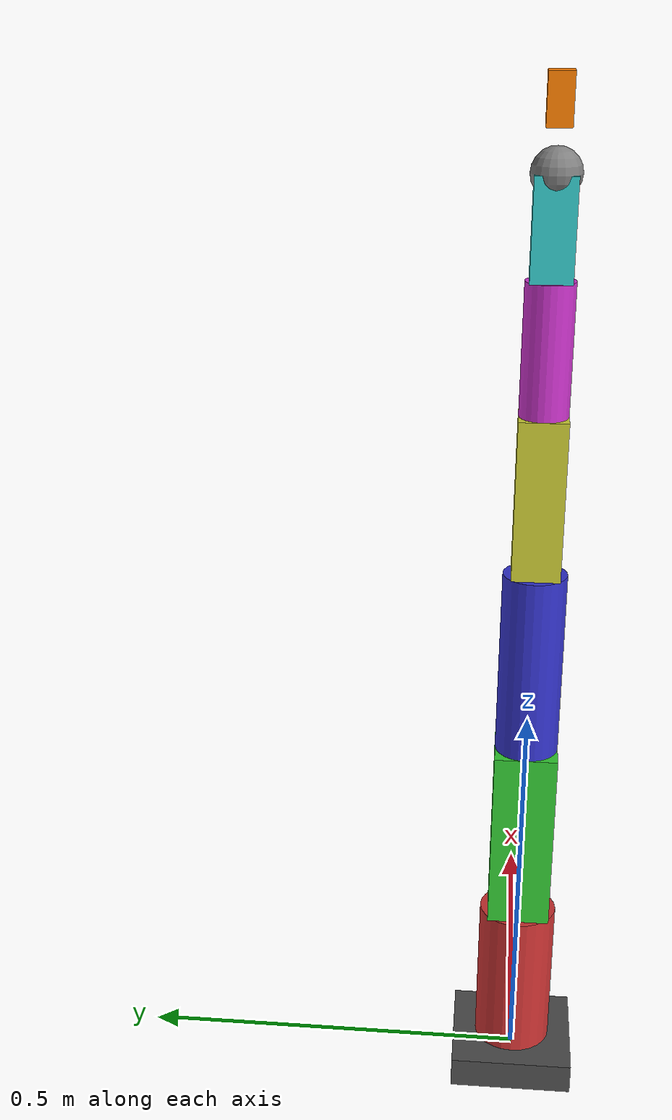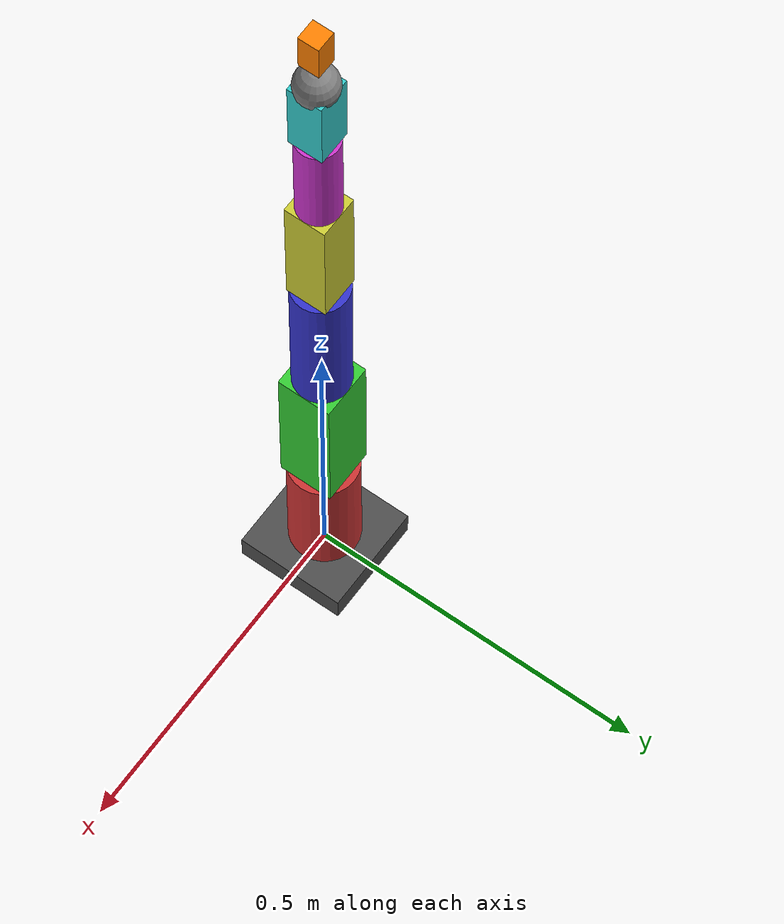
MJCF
<?xml version="1.0"?>
<mujoco model="franka_panda">
  <option timestep="0.005" gravity="0 0 -9.81"/>

  <default>
    <geom type="box" size="0.04 0.04 0.04" rgba="0.5 0.5 0.5 1" mass="0.5"/>
  </default>

  <worldbody>
    <light name="top" pos="0 0 3"/>
    <body name="base" pos="0 0 0">
      <geom name="base_plate" type="box" size="0.08 0.08 0.02" pos="0 0 0" rgba="0.3 0.3 0.3 1" mass="2.0"/>
      <body name="link0" pos="0 0 0.02">
        <joint name="joint1" type="hinge" axis="0 0 1" range="-166 166"/>
        <geom name="link0_geom" type="cylinder" size="0.05 0.1" pos="0 0 0.1" rgba="0.8 0.2 0.2 1" mass="1.5"/>
        <inertial pos="0 0 0.1" mass="1.5" diaginertia="0.001 0.001 0.001"/>
        <body name="link1" pos="0 0 0.2">
          <joint name="joint2" type="hinge" axis="0 1 0" range="-166 166"/>
          <geom name="link1_geom" type="box" size="0.04 0.04 0.12" pos="0 0 0.12" rgba="0.2 0.8 0.2 1" mass="1.5"/>
          <inertial pos="0 0 0.12" mass="1.5" diaginertia="0.002 0.002 0.001"/>
          <body name="link2" pos="0 0 0.24">
            <joint name="joint3" type="hinge" axis="0 0 1" range="-166 166"/>
            <geom name="link2_geom" type="cylinder" size="0.04 0.12" pos="0 0 0.12" rgba="0.2 0.2 0.8 1" mass="1.2"/>
            <inertial pos="0 0 0.12" mass="1.2" diaginertia="0.002 0.002 0.001"/>
            <body name="link3" pos="0 0 0.24">
              <joint name="joint4" type="hinge" axis="0 1 0" range="-166 166"/>
              <geom name="link3_geom" type="box" size="0.03 0.03 0.1" pos="0 0 0.1" rgba="0.8 0.8 0.2 1" mass="1.0"/>
              <inertial pos="0 0 0.1" mass="1.0" diaginertia="0.001 0.001 0.001"/>
              <body name="link4" pos="0 0 0.2">
                <joint name="joint5" type="hinge" axis="0 0 1" range="-166 166"/>
                <geom name="link4_geom" type="cylinder" size="0.03 0.08" pos="0 0 0.08" rgba="0.8 0.2 0.8 1" mass="0.8"/>
                <inertial pos="0 0 0.08" mass="0.8" diaginertia="0.001 0.001 0.001"/>
                <body name="link5" pos="0 0 0.16">
                  <joint name="joint6" type="hinge" axis="0 1 0" range="-166 166"/>
                  <geom name="link5_geom" type="box" size="0.025 0.025 0.06" pos="0 0 0.06" rgba="0.2 0.8 0.8 1" mass="0.5"/>
                  <inertial pos="0 0 0.06" mass="0.5" diaginertia="0.001 0.001 0.001"/>
                  <body name="link6" pos="0 0 0.12">
                    <joint name="joint7" type="hinge" axis="0 0 1" range="-166 166"/>
                    <geom name="link6_geom" type="sphere" size="0.03" pos="0 0 0" rgba="0.5 0.5 0.5 1" mass="0.3"/>
                    <inertial pos="0 0 0" mass="0.3" diaginertia="0.0005 0.0005 0.0005"/>
                    <body name="hand" pos="0 0 0.05">
                      <geom name="hand_geom" type="box" size="0.015 0.015 0.03" pos="0 0 0.03" rgba="1 0.5 0 1" mass="0.1"/>
                      <inertial pos="0 0 0.03" mass="0.1" diaginertia="0.0001 0.0001 0.0001"/>
                    </body>
                  </body>
                </body>
              </body>
            </body>
          </body>
        </body>
      </body>
    </body>
  </worldbody>
</mujoco>
